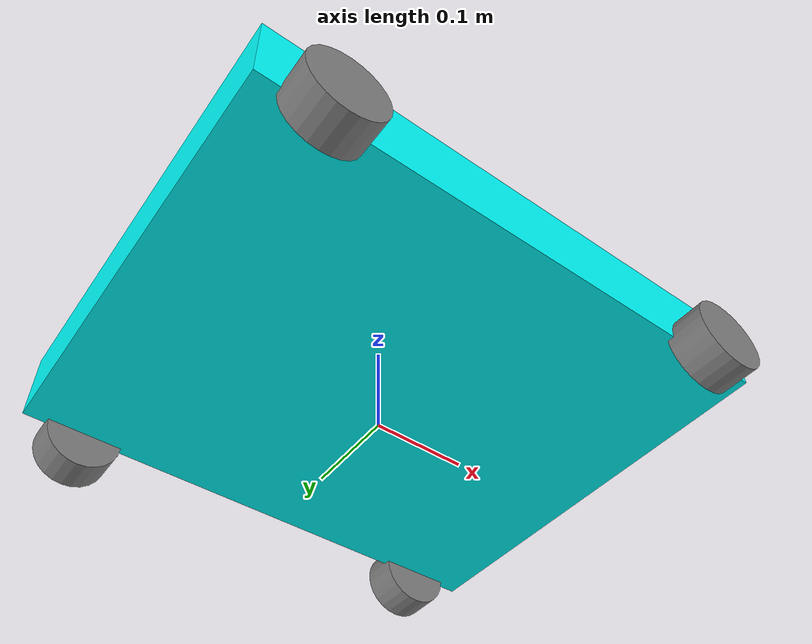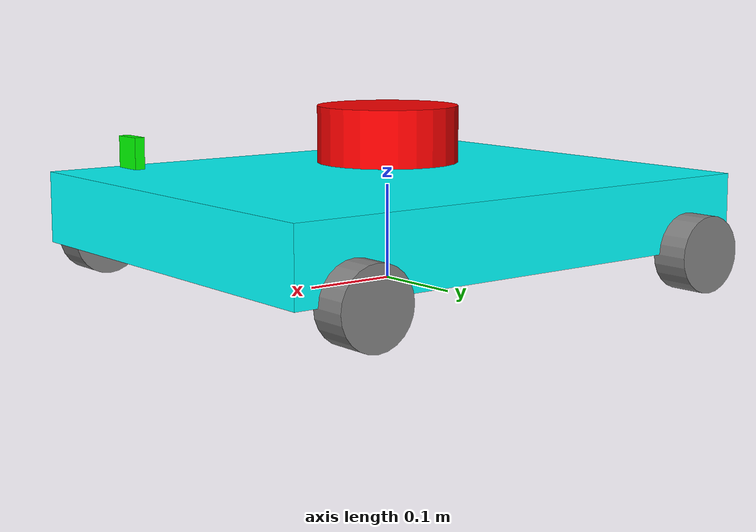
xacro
<?xml version="1.0"?>
<robot xmlns:xacro="http://www.ros.org/wiki/xacro"  name="robot">

    <xacro:arg name="use_ros2_control" default="true"/>
    <xacro:arg name="sim_mode" default="false"/>

    <xacro:include filename="trr_robot.xacro" />

    <xacro:if value="$(arg use_ros2_control)">
        <xacro:include filename="ros2_control.xacro" />
    </xacro:if>
    <xacro:unless value="$(arg use_ros2_control)">
        <xacro:include filename="gz.xacro" />
    </xacro:unless>

</robot>

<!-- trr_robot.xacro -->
<robot xmlns:xacro="http://www.ros.org/wiki/xacro" name="bcr_bot">

    <xacro:property name="base_width" value="0.4572"/>
    <xacro:property name="base_length" value="0.5588"/>
    <xacro:property name="base_height" value="0.0762"/>

    <xacro:property name="wheel_radius" value="0.04"/>
    <xacro:property name="wheel_width" value="0.04"/>
    <xacro:property name="wheel_ygap" value="0.0127"/>
    <xacro:property name="wheel_zoff" value="0.0381"/>
    <xacro:property name="wheel_xoff" value="0.215"/>

    <!-- ............................... LOAD MACROS ................................. -->

    <xacro:include filename="$(find trr_robot)/description/gz.xacro"/>

    <!-- ................................ BASE LINK .................................. -->
    <link name="base_footprint"></link>

    <joint name="base_joint" type="fixed">
        <parent link="base_footprint"/>
        <child link="base_link"/>
        <origin xyz="0.0 0.0 0.075" rpy="0 0 0"/>
    </joint>

    <link name="base_link">
        <visual>
            <geometry>
                <box size="${base_length} ${base_width} ${base_height}"/>
            </geometry>
            <material name="Cyan">
                <color rgba="0 1.0 1.0 1.0"/>
            </material>
        </visual>
        <collision>
            <origin xyz="0 0 0.05" rpy="0 0 0"/>
            <geometry>
                <box size="${base_length} ${base_width} ${base_height}"/>
            </geometry>
        </collision>
        <inertial>
            <origin xyz="0 0 0.05" rpy="0 0 0"/>
            <mass value="12"/>
            <inertia ixx="2.26" ixy="0.0" ixz="0.0" iyy="6.26" iyz="0.0" izz="8.5"/>
        </inertial>
    </link>

    <!-- ................................ WHEELS ..................................... -->
    <xacro:macro name="wheel" params="prefix x_reflect y_reflect">
        <link name="${prefix}_link">
            <visual>
                <origin xyz="0 0 0" rpy="${pi/2} 0 0"/>
                <geometry>
                    <cylinder radius="${wheel_radius}" length="${wheel_width}"/>
                </geometry>
                <material name="Gray">
                <color rgba="0.5 0.5 0.5 1.0"/>
                </material>
            </visual>
            <collision>
                <origin xyz="0 0 0" rpy="${pi/2} 0 0"/>
                <geometry>
                    <cylinder radius="${wheel_radius}" length="${wheel_width}"/>
                </geometry>
            </collision>
            <inertial>
                <origin xyz="0 0 0"/>
                <mass value="0.05"/>
                <inertia ixx="0.00001" ixy="0" ixz="0" iyy="0.000018" iyz="0" izz="0.00001"/>
            </inertial>
        </link>

        <joint name="${prefix}_joint" type="continuous">
            <parent link="base_link"/>
            <child link="${prefix}_link"/>
            <origin xyz="${x_reflect*wheel_xoff} ${y_reflect*(base_width/2+wheel_ygap)} ${-wheel_zoff}" rpy="0 0 0"/>
            <axis xyz="0 1 0"/>
        </joint>
    </xacro:macro>

    <xacro:wheel prefix="drivewhl_fl" x_reflect="1" y_reflect="1" />
    <xacro:wheel prefix="drivewhl_fr" x_reflect="1" y_reflect="-1" />
    <xacro:wheel prefix="drivewhl_rl" x_reflect="-1" y_reflect="1" />
    <xacro:wheel prefix="drivewhl_rr" x_reflect="-1" y_reflect="-1" />

    <!-- ............................ Depth Camera................................... -->

    <link name="depth_camera">
        <visual>
            <geometry>
                <box size="0.010 0.03 0.03"/>
            </geometry>
            <material name="Green">
                <color rgba="0.0 1.0 0.0 1.0"/>
            </material>
        </visual>
    </link>

    <joint name="depth_camera_joint" type="fixed">
        <origin xyz="0.305 0 0.08" rpy="0 0 0"/>
        <parent link="base_link"/>
        <child link="depth_camera"/>
    </joint>

    <link name="depth_camera_optical"/>

    <joint name="depth_camera_optical_joint" type="fixed">
        <origin xyz="0 0 0" rpy="${-pi/2} 0 ${-pi/2}"/>
        <parent link="depth_camera"/>
        <child link="depth_camera_optical"/>
    </joint>

    <!-- ............................ LIDAR ................................... -->

    <link name="lidar">
        <collision>
            <origin xyz="0 0 0" rpy="0 0 0" />
            <geometry>
                <cylinder length="0.06" radius="0.075"/>
            </geometry>
        </collision>
        <visual>
            <origin xyz="0 0 0" rpy="0 0 0" />
            <geometry>
                <cylinder length="0.06" radius="0.075"/>
            </geometry>
            <material name="Red">
                <color rgba="1.0 0.0 0.0 1.0"/>
            </material>
        </visual>
    </link>

    <joint name="lidar_joint" type="fixed">
        <parent link="base_link"/>
        <child link="lidar"/>
        <origin xyz="0.0 0 0.08" rpy="0 0 0" />
    </joint>

</robot>
